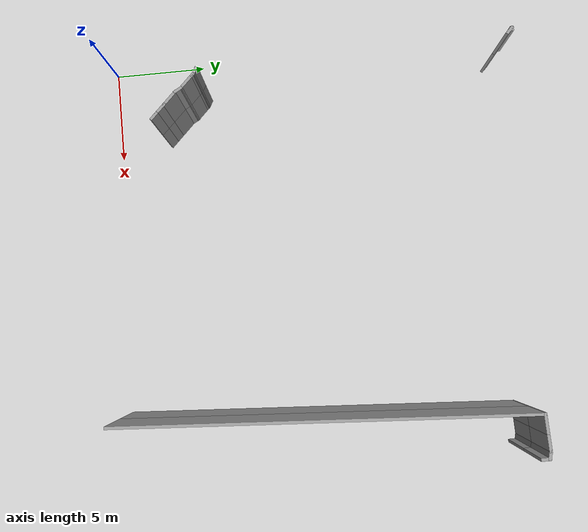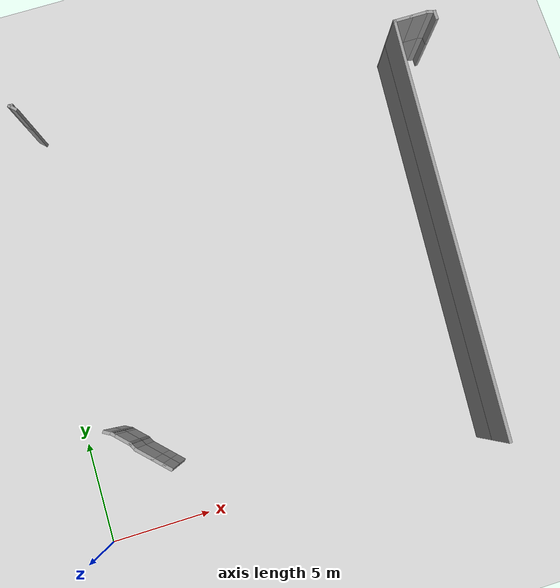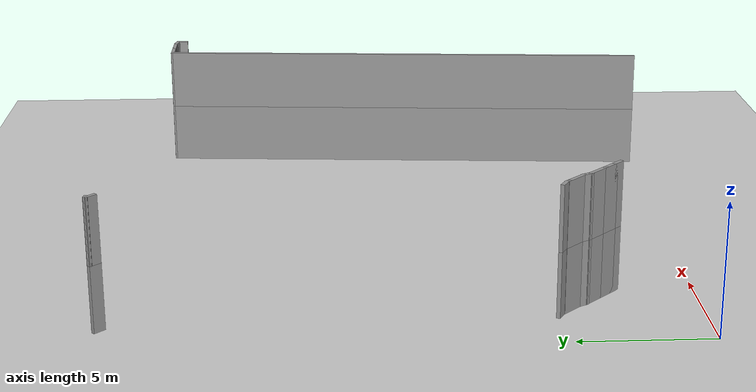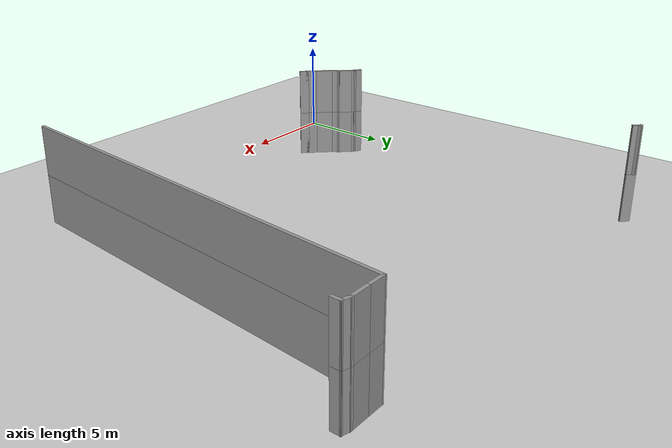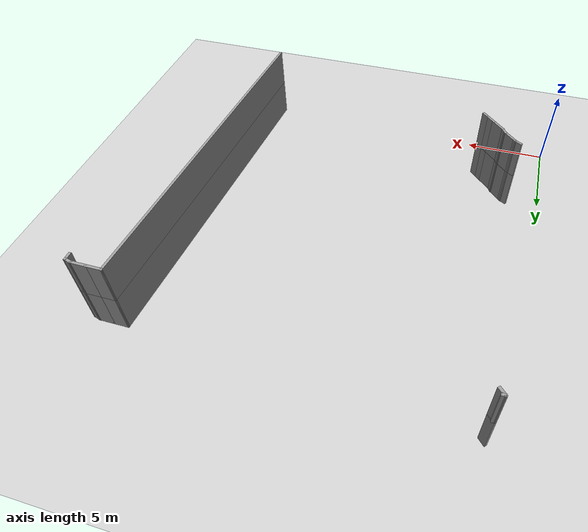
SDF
<sdf version="1.7">
 <world name="default">
  <model name="ground_plane">
   <static>1</static>
   <link name="link">
    <collision name="collision">
     <geometry><plane><normal>0 0 1</normal><size>100 100</size></plane></geometry>
     <surface>
      <contact><collide_bitmask>65535</collide_bitmask></contact>
      <friction><ode><mu>100</mu><mu2>50</mu2></ode></friction>
     </surface>
    </collision>
    <visual name="visual">
     <cast_shadows>0</cast_shadows>
     <geometry><plane><normal>0 0 1</normal><size>100 100</size></plane></geometry>
     <material>
      <script><uri>file://media/materials/scripts/gazebo.material</uri><name>Gazebo/Grey</name></script>
     </material>
    </visual>
   </link>
  </model>
  <model name="EnvDC01">
   <link name="Wall_260">
    <pose>-4.85596 27.6265 0 0 0 -0.785398</pose>
    <visual name="Wall_260_Visual">
     <pose>0 0 1.25 0 -0 0</pose>
     <geometry><box><size>0.5 0.15 2.5</size></box></geometry>
     <material>
      <script><uri>file://media/materials/scripts/gazebo.material</uri><name>Gazebo/Grey</name></script>
      <ambient>1 1 1 1</ambient>
      <shader type="pixel"/>
     </material>
     <meta><layer>0</layer></meta>
    </visual>
    <collision name="Wall_260_Collision">
     <pose>0 0 1.25 0 -0 0</pose>
     <geometry><box><size>0.5 0.15 2.5</size></box></geometry>
     <surface>
      <friction>
       <ode><mu>1</mu><mu2>1</mu2><fdir1>0 0 0</fdir1><slip1>0</slip1><slip2>0</slip2></ode>
       <torsional>
        <coefficient>1</coefficient>
        <patch_radius>0</patch_radius>
        <surface_radius>0</surface_radius>
        <use_patch_radius>1</use_patch_radius>
        <ode><slip>0</slip></ode>
       </torsional>
      </friction>
      <bounce><restitution_coefficient>0</restitution_coefficient><threshold>1e+06</threshold></bounce>
      <contact>
       <collide_without_contact>0</collide_without_contact>
       <collide_without_contact_bitmask>1</collide_without_contact_bitmask>
       <collide_bitmask>1</collide_bitmask>
       <ode>
        <soft_cfm>0</soft_cfm>
        <soft_erp>0.2</soft_erp>
        <kp>1e+13</kp>
        <kd>1</kd>
        <max_vel>0.01</max_vel>
        <min_depth>0</min_depth>
       </ode>
       <bullet>
        <split_impulse>1</split_impulse>
        <split_impulse_penetration_threshold>-0.01</split_impulse_penetration_threshold>
        <soft_cfm>0</soft_cfm>
        <soft_erp>0.2</soft_erp>
        <kp>1e+13</kp>
        <kd>1</kd>
       </bullet>
      </contact>
     </surface>
    </collision>
   </link>
   <link name="Wall_269">
    <pose>16.2758 26.2797 2.5 0 0 -1.5708</pose>
    <visual name="Wall_269_Visual">
     <pose>0 0 1.25 0 -0 0</pose>
     <geometry><box><size>0.5 0.15 2.5</size></box></geometry>
     <material>
      <script><uri>file://media/materials/scripts/gazebo.material</uri><name>Gazebo/Grey</name></script>
      <ambient>1 1 1 1</ambient>
      <shader type="pixel"/>
     </material>
     <meta><layer>1</layer></meta>
    </visual>
    <collision name="Wall_269_Collision">
     <pose>0 0 1.25 0 -0 0</pose>
     <geometry><box><size>0.5 0.15 2.5</size></box></geometry>
     <surface>
      <friction>
       <ode><mu>1</mu><mu2>1</mu2><fdir1>0 0 0</fdir1><slip1>0</slip1><slip2>0</slip2></ode>
       <torsional>
        <coefficient>1</coefficient>
        <patch_radius>0</patch_radius>
        <surface_radius>0</surface_radius>
        <use_patch_radius>1</use_patch_radius>
        <ode><slip>0</slip></ode>
       </torsional>
      </friction>
      <bounce><restitution_coefficient>0</restitution_coefficient><threshold>1e+06</threshold></bounce>
      <contact>
       <collide_without_contact>0</collide_without_contact>
       <collide_without_contact_bitmask>1</collide_without_contact_bitmask>
       <collide_bitmask>1</collide_bitmask>
       <ode>
        <soft_cfm>0</soft_cfm>
        <soft_erp>0.2</soft_erp>
        <kp>1e+13</kp>
        <kd>1</kd>
        <max_vel>0.01</max_vel>
        <min_depth>0</min_depth>
       </ode>
       <bullet>
        <split_impulse>1</split_impulse>
        <split_impulse_penetration_threshold>-0.01</split_impulse_penetration_threshold>
        <soft_cfm>0</soft_cfm>
        <soft_erp>0.2</soft_erp>
        <kp>1e+13</kp>
        <kd>1</kd>
       </bullet>
      </contact>
     </surface>
    </collision>
   </link>
   <link name="Wall_270">
    <pose>16.1067 26.5 2.5 0 -0 2.87979</pose>
    <visual name="Wall_270_Visual">
     <pose>0 0 1.25 0 -0 0</pose>
     <geometry><box><size>0.5 0.15 2.5</size></box></geometry>
     <material>
      <script><uri>file://media/materials/scripts/gazebo.material</uri><name>Gazebo/Grey</name></script>
      <ambient>1 1 1 1</ambient>
      <shader type="pixel"/>
     </material>
     <meta><layer>1</layer></meta>
    </visual>
    <collision name="Wall_270_Collision">
     <pose>0 0 1.25 0 -0 0</pose>
     <geometry><box><size>0.5 0.15 2.5</size></box></geometry>
     <surface>
      <friction>
       <ode><mu>1</mu><mu2>1</mu2><fdir1>0 0 0</fdir1><slip1>0</slip1><slip2>0</slip2></ode>
       <torsional>
        <coefficient>1</coefficient>
        <patch_radius>0</patch_radius>
        <surface_radius>0</surface_radius>
        <use_patch_radius>1</use_patch_radius>
        <ode><slip>0</slip></ode>
       </torsional>
      </friction>
      <bounce><restitution_coefficient>0</restitution_coefficient><threshold>1e+06</threshold></bounce>
      <contact>
       <collide_without_contact>0</collide_without_contact>
       <collide_without_contact_bitmask>1</collide_without_contact_bitmask>
       <collide_bitmask>1</collide_bitmask>
       <ode>
        <soft_cfm>0</soft_cfm>
        <soft_erp>0.2</soft_erp>
        <kp>1e+13</kp>
        <kd>1</kd>
        <max_vel>0.01</max_vel>
        <min_depth>0</min_depth>
       </ode>
       <bullet>
        <split_impulse>1</split_impulse>
        <split_impulse_penetration_threshold>-0.01</split_impulse_penetration_threshold>
        <soft_cfm>0</soft_cfm>
        <soft_erp>0.2</soft_erp>
        <kp>1e+13</kp>
        <kd>1</kd>
       </bullet>
      </contact>
     </surface>
    </collision>
   </link>
   <link name="Wall_271">
    <pose>15.5127 26.5453 2.5 0 -0 3.14159</pose>
    <visual name="Wall_271_Visual">
     <pose>0 0 1.25 0 -0 0</pose>
     <geometry><box><size>1 0.15 2.5</size></box></geometry>
     <material>
      <script><uri>file://media/materials/scripts/gazebo.material</uri><name>Gazebo/Grey</name></script>
      <ambient>1 1 1 1</ambient>
      <shader type="pixel"/>
     </material>
     <meta><layer>1</layer></meta>
    </visual>
    <collision name="Wall_271_Collision">
     <pose>0 0 1.25 0 -0 0</pose>
     <geometry><box><size>1 0.15 2.5</size></box></geometry>
     <surface>
      <friction>
       <ode><mu>1</mu><mu2>1</mu2><fdir1>0 0 0</fdir1><slip1>0</slip1><slip2>0</slip2></ode>
       <torsional>
        <coefficient>1</coefficient>
        <patch_radius>0</patch_radius>
        <surface_radius>0</surface_radius>
        <use_patch_radius>1</use_patch_radius>
        <ode><slip>0</slip></ode>
       </torsional>
      </friction>
      <bounce><restitution_coefficient>0</restitution_coefficient><threshold>1e+06</threshold></bounce>
      <contact>
       <collide_without_contact>0</collide_without_contact>
       <collide_without_contact_bitmask>1</collide_without_contact_bitmask>
       <collide_bitmask>1</collide_bitmask>
       <ode>
        <soft_cfm>0</soft_cfm>
        <soft_erp>0.2</soft_erp>
        <kp>1e+13</kp>
        <kd>1</kd>
        <max_vel>0.01</max_vel>
        <min_depth>0</min_depth>
       </ode>
       <bullet>
        <split_impulse>1</split_impulse>
        <split_impulse_penetration_threshold>-0.01</split_impulse_penetration_threshold>
        <soft_cfm>0</soft_cfm>
        <soft_erp>0.2</soft_erp>
        <kp>1e+13</kp>
        <kd>1</kd>
       </bullet>
      </contact>
     </surface>
    </collision>
   </link>
   <link name="Wall_272">
    <pose>14.6627 26.5453 2.5 0 -0 3.14159</pose>
    <visual name="Wall_272_Visual">
     <pose>0 0 1.25 0 -0 0</pose>
     <geometry><box><size>1 0.15 2.5</size></box></geometry>
     <material>
      <script><uri>file://media/materials/scripts/gazebo.material</uri><name>Gazebo/Grey</name></script>
      <ambient>1 1 1 1</ambient>
      <shader type="pixel"/>
     </material>
     <meta><layer>1</layer></meta>
    </visual>
    <collision name="Wall_272_Collision">
     <pose>0 0 1.25 0 -0 0</pose>
     <geometry><box><size>1 0.15 2.5</size></box></geometry>
     <surface>
      <friction>
       <ode><mu>1</mu><mu2>1</mu2><fdir1>0 0 0</fdir1><slip1>0</slip1><slip2>0</slip2></ode>
       <torsional>
        <coefficient>1</coefficient>
        <patch_radius>0</patch_radius>
        <surface_radius>0</surface_radius>
        <use_patch_radius>1</use_patch_radius>
        <ode><slip>0</slip></ode>
       </torsional>
      </friction>
      <bounce><restitution_coefficient>0</restitution_coefficient><threshold>1e+06</threshold></bounce>
      <contact>
       <collide_without_contact>0</collide_without_contact>
       <collide_without_contact_bitmask>1</collide_without_contact_bitmask>
       <collide_bitmask>1</collide_bitmask>
       <ode>
        <soft_cfm>0</soft_cfm>
        <soft_erp>0.2</soft_erp>
        <kp>1e+13</kp>
        <kd>1</kd>
        <max_vel>0.01</max_vel>
        <min_depth>0</min_depth>
       </ode>
       <bullet>
        <split_impulse>1</split_impulse>
        <split_impulse_penetration_threshold>-0.01</split_impulse_penetration_threshold>
        <soft_cfm>0</soft_cfm>
        <soft_erp>0.2</soft_erp>
        <kp>1e+13</kp>
        <kd>1</kd>
       </bullet>
      </contact>
     </surface>
    </collision>
   </link>
   <link name="Wall_273">
    <pose>13.477 16.2089 2.5 0 0 -1.64426</pose>
    <visual name="Wall_273_Visual">
     <pose>0 0 1.25 0 -0 0</pose>
     <geometry><box><size>20.8787 0.15 2.5</size></box></geometry>
     <material>
      <script><uri>file://media/materials/scripts/gazebo.material</uri><name>Gazebo/Grey</name></script>
      <ambient>1 1 1 1</ambient>
      <shader type="pixel"/>
     </material>
     <meta><layer>1</layer></meta>
    </visual>
    <collision name="Wall_273_Collision">
     <pose>0 0 1.25 0 -0 0</pose>
     <geometry><box><size>20.8787 0.15 2.5</size></box></geometry>
     <surface>
      <friction>
       <ode><mu>1</mu><mu2>1</mu2><fdir1>0 0 0</fdir1><slip1>0</slip1><slip2>0</slip2></ode>
       <torsional>
        <coefficient>1</coefficient>
        <patch_radius>0</patch_radius>
        <surface_radius>0</surface_radius>
        <use_patch_radius>1</use_patch_radius>
        <ode><slip>0</slip></ode>
       </torsional>
      </friction>
      <bounce><restitution_coefficient>0</restitution_coefficient><threshold>1e+06</threshold></bounce>
      <contact>
       <collide_without_contact>0</collide_without_contact>
       <collide_without_contact_bitmask>1</collide_without_contact_bitmask>
       <collide_bitmask>1</collide_bitmask>
       <ode>
        <soft_cfm>0</soft_cfm>
        <soft_erp>0.2</soft_erp>
        <kp>1e+13</kp>
        <kd>1</kd>
        <max_vel>0.01</max_vel>
        <min_depth>0</min_depth>
       </ode>
       <bullet>
        <split_impulse>1</split_impulse>
        <split_impulse_penetration_threshold>-0.01</split_impulse_penetration_threshold>
        <soft_cfm>0</soft_cfm>
        <soft_erp>0.2</soft_erp>
        <kp>1e+13</kp>
        <kd>1</kd>
       </bullet>
      </contact>
     </surface>
    </collision>
   </link>
   <link name="Wall_300">
    <pose>-2.20785 9.22536 2.5 0 -0 2.35619</pose>
    <visual name="Wall_300_Visual">
     <pose>0 0 1.25 0 -0 0</pose>
     <geometry><box><size>0.5 0.15 2.5</size></box></geometry>
     <material>
      <script><uri>file://media/materials/scripts/gazebo.material</uri><name>Gazebo/Grey</name></script>
      <ambient>1 1 1 1</ambient>
      <shader type="pixel"/>
     </material>
     <meta><layer>1</layer></meta>
    </visual>
    <collision name="Wall_300_Collision">
     <pose>0 0 1.25 0 -0 0</pose>
     <geometry><box><size>0.5 0.15 2.5</size></box></geometry>
     <surface>
      <friction>
       <ode><mu>1</mu><mu2>1</mu2><fdir1>0 0 0</fdir1><slip1>0</slip1><slip2>0</slip2></ode>
       <torsional>
        <coefficient>1</coefficient>
        <patch_radius>0</patch_radius>
        <surface_radius>0</surface_radius>
        <use_patch_radius>1</use_patch_radius>
        <ode><slip>0</slip></ode>
       </torsional>
      </friction>
      <bounce><restitution_coefficient>0</restitution_coefficient><threshold>1e+06</threshold></bounce>
      <contact>
       <collide_without_contact>0</collide_without_contact>
       <collide_without_contact_bitmask>1</collide_without_contact_bitmask>
       <collide_bitmask>1</collide_bitmask>
       <ode>
        <soft_cfm>0</soft_cfm>
        <soft_erp>0.2</soft_erp>
        <kp>1e+13</kp>
        <kd>1</kd>
        <max_vel>0.01</max_vel>
        <min_depth>0</min_depth>
       </ode>
       <bullet>
        <split_impulse>1</split_impulse>
        <split_impulse_penetration_threshold>-0.01</split_impulse_penetration_threshold>
        <soft_cfm>0</soft_cfm>
        <soft_erp>0.2</soft_erp>
        <kp>1e+13</kp>
        <kd>1</kd>
       </bullet>
      </contact>
     </surface>
    </collision>
   </link>
   <link name="Wall_301">
    <pose>-2.54372 9.56123 2.5 0 -0 2.35619</pose>
    <visual name="Wall_301_Visual">
     <pose>0 0 1.25 0 -0 0</pose>
     <geometry><box><size>0.75 0.15 2.5</size></box></geometry>
     <material>
      <script><uri>file://media/materials/scripts/gazebo.material</uri><name>Gazebo/Grey</name></script>
      <ambient>1 1 1 1</ambient>
      <shader type="pixel"/>
     </material>
     <meta><layer>1</layer></meta>
    </visual>
    <collision name="Wall_301_Collision">
     <pose>0 0 1.25 0 -0 0</pose>
     <geometry><box><size>0.75 0.15 2.5</size></box></geometry>
     <surface>
      <friction>
       <ode><mu>1</mu><mu2>1</mu2><fdir1>0 0 0</fdir1><slip1>0</slip1><slip2>0</slip2></ode>
       <torsional>
        <coefficient>1</coefficient>
        <patch_radius>0</patch_radius>
        <surface_radius>0</surface_radius>
        <use_patch_radius>1</use_patch_radius>
        <ode><slip>0</slip></ode>
       </torsional>
      </friction>
      <bounce><restitution_coefficient>0</restitution_coefficient><threshold>1e+06</threshold></bounce>
      <contact>
       <collide_without_contact>0</collide_without_contact>
       <collide_without_contact_bitmask>1</collide_without_contact_bitmask>
       <collide_bitmask>1</collide_bitmask>
       <ode>
        <soft_cfm>0</soft_cfm>
        <soft_erp>0.2</soft_erp>
        <kp>1e+13</kp>
        <kd>1</kd>
        <max_vel>0.01</max_vel>
        <min_depth>0</min_depth>
       </ode>
       <bullet>
        <split_impulse>1</split_impulse>
        <split_impulse_penetration_threshold>-0.01</split_impulse_penetration_threshold>
        <soft_cfm>0</soft_cfm>
        <soft_erp>0.2</soft_erp>
        <kp>1e+13</kp>
        <kd>1</kd>
       </bullet>
      </contact>
     </surface>
    </collision>
   </link>
   <link name="Wall_302">
    <pose>-3.05637 10.0739 2.5 0 -0 2.35619</pose>
    <visual name="Wall_302_Visual">
     <pose>0 0 1.25 0 -0 0</pose>
     <geometry><box><size>1 0.15 2.5</size></box></geometry>
     <material>
      <script><uri>file://media/materials/scripts/gazebo.material</uri><name>Gazebo/Grey</name></script>
      <ambient>1 1 1 1</ambient>
      <shader type="pixel"/>
     </material>
     <meta><layer>1</layer></meta>
    </visual>
    <collision name="Wall_302_Collision">
     <pose>0 0 1.25 0 -0 0</pose>
     <geometry><box><size>1 0.15 2.5</size></box></geometry>
     <surface>
      <friction>
       <ode><mu>1</mu><mu2>1</mu2><fdir1>0 0 0</fdir1><slip1>0</slip1><slip2>0</slip2></ode>
       <torsional>
        <coefficient>1</coefficient>
        <patch_radius>0</patch_radius>
        <surface_radius>0</surface_radius>
        <use_patch_radius>1</use_patch_radius>
        <ode><slip>0</slip></ode>
       </torsional>
      </friction>
      <bounce><restitution_coefficient>0</restitution_coefficient><threshold>1e+06</threshold></bounce>
      <contact>
       <collide_without_contact>0</collide_without_contact>
       <collide_without_contact_bitmask>1</collide_without_contact_bitmask>
       <collide_bitmask>1</collide_bitmask>
       <ode>
        <soft_cfm>0</soft_cfm>
        <soft_erp>0.2</soft_erp>
        <kp>1e+13</kp>
        <kd>1</kd>
        <max_vel>0.01</max_vel>
        <min_depth>0</min_depth>
       </ode>
       <bullet>
        <split_impulse>1</split_impulse>
        <split_impulse_penetration_threshold>-0.01</split_impulse_penetration_threshold>
        <soft_cfm>0</soft_cfm>
        <soft_erp>0.2</soft_erp>
        <kp>1e+13</kp>
        <kd>1</kd>
       </bullet>
      </contact>
     </surface>
    </collision>
   </link>
   <link name="Wall_303">
    <pose>-3.44439 10.526 2.5 0 -0 2.0944</pose>
    <visual name="Wall_303_Visual">
     <pose>0 0 1.25 0 -0 0</pose>
     <geometry><box><size>0.5 0.15 2.5</size></box></geometry>
     <material>
      <script><uri>file://media/materials/scripts/gazebo.material</uri><name>Gazebo/Grey</name></script>
      <ambient>1 1 1 1</ambient>
      <shader type="pixel"/>
     </material>
     <meta><layer>1</layer></meta>
    </visual>
    <collision name="Wall_303_Collision">
     <pose>0 0 1.25 0 -0 0</pose>
     <geometry><box><size>0.5 0.15 2.5</size></box></geometry>
     <surface>
      <friction>
       <ode><mu>1</mu><mu2>1</mu2><fdir1>0 0 0</fdir1><slip1>0</slip1><slip2>0</slip2></ode>
       <torsional>
        <coefficient>1</coefficient>
        <patch_radius>0</patch_radius>
        <surface_radius>0</surface_radius>
        <use_patch_radius>1</use_patch_radius>
        <ode><slip>0</slip></ode>
       </torsional>
      </friction>
      <bounce><restitution_coefficient>0</restitution_coefficient><threshold>1e+06</threshold></bounce>
      <contact>
       <collide_without_contact>0</collide_without_contact>
       <collide_without_contact_bitmask>1</collide_without_contact_bitmask>
       <collide_bitmask>1</collide_bitmask>
       <ode>
        <soft_cfm>0</soft_cfm>
        <soft_erp>0.2</soft_erp>
        <kp>1e+13</kp>
        <kd>1</kd>
        <max_vel>0.01</max_vel>
        <min_depth>0</min_depth>
       </ode>
       <bullet>
        <split_impulse>1</split_impulse>
        <split_impulse_penetration_threshold>-0.01</split_impulse_penetration_threshold>
        <soft_cfm>0</soft_cfm>
        <soft_erp>0.2</soft_erp>
        <kp>1e+13</kp>
        <kd>1</kd>
       </bullet>
      </contact>
     </surface>
    </collision>
   </link>
   <link name="Wall_304">
    <pose>-3.83242 10.978 2.5 0 -0 2.35619</pose>
    <visual name="Wall_304_Visual">
     <pose>0 0 1.25 0 -0 0</pose>
     <geometry><box><size>1 0.15 2.5</size></box></geometry>
     <material>
      <script><uri>file://media/materials/scripts/gazebo.material</uri><name>Gazebo/Grey</name></script>
      <ambient>1 1 1 1</ambient>
      <shader type="pixel"/>
     </material>
     <meta><layer>1</layer></meta>
    </visual>
    <collision name="Wall_304_Collision">
     <pose>0 0 1.25 0 -0 0</pose>
     <geometry><box><size>1 0.15 2.5</size></box></geometry>
     <surface>
      <friction>
       <ode><mu>1</mu><mu2>1</mu2><fdir1>0 0 0</fdir1><slip1>0</slip1><slip2>0</slip2></ode>
       <torsional>
        <coefficient>1</coefficient>
        <patch_radius>0</patch_radius>
        <surface_radius>0</surface_radius>
        <use_patch_radius>1</use_patch_radius>
        <ode><slip>0</slip></ode>
       </torsional>
      </friction>
      <bounce><restitution_coefficient>0</restitution_coefficient><threshold>1e+06</threshold></bounce>
      <contact>
       <collide_without_contact>0</collide_without_contact>
       <collide_without_contact_bitmask>1</collide_without_contact_bitmask>
       <collide_bitmask>1</collide_bitmask>
       <ode>
        <soft_cfm>0</soft_cfm>
        <soft_erp>0.2</soft_erp>
        <kp>1e+13</kp>
        <kd>1</kd>
        <max_vel>0.01</max_vel>
        <min_depth>0</min_depth>
       </ode>
       <bullet>
        <split_impulse>1</split_impulse>
        <split_impulse_penetration_threshold>-0.01</split_impulse_penetration_threshold>
        <soft_cfm>0</soft_cfm>
        <soft_erp>0.2</soft_erp>
        <kp>1e+13</kp>
        <kd>1</kd>
       </bullet>
      </contact>
     </surface>
    </collision>
   </link>
   <link name="Wall_305">
    <pose>-4.16829 11.3139 2.5 0 -0 2.35619</pose>
    <visual name="Wall_305_Visual">
     <pose>0 0 1.25 0 -0 0</pose>
     <geometry><box><size>0.25 0.15 2.5</size></box></geometry>
     <material>
      <script><uri>file://media/materials/scripts/gazebo.material</uri><name>Gazebo/Grey</name></script>
      <ambient>1 1 1 1</ambient>
      <shader type="pixel"/>
     </material>
     <meta><layer>1</layer></meta>
    </visual>
    <collision name="Wall_305_Collision">
     <pose>0 0 1.25 0 -0 0</pose>
     <geometry><box><size>0.25 0.15 2.5</size></box></geometry>
     <surface>
      <friction>
       <ode><mu>1</mu><mu2>1</mu2><fdir1>0 0 0</fdir1><slip1>0</slip1><slip2>0</slip2></ode>
       <torsional>
        <coefficient>1</coefficient>
        <patch_radius>0</patch_radius>
        <surface_radius>0</surface_radius>
        <use_patch_radius>1</use_patch_radius>
        <ode><slip>0</slip></ode>
       </torsional>
      </friction>
      <bounce><restitution_coefficient>0</restitution_coefficient><threshold>1e+06</threshold></bounce>
      <contact>
       <collide_without_contact>0</collide_without_contact>
       <collide_without_contact_bitmask>1</collide_without_contact_bitmask>
       <collide_bitmask>1</collide_bitmask>
       <ode>
        <soft_cfm>0</soft_cfm>
        <soft_erp>0.2</soft_erp>
        <kp>1e+13</kp>
        <kd>1</kd>
        <max_vel>0.01</max_vel>
        <min_depth>0</min_depth>
       </ode>
       <bullet>
        <split_impulse>1</split_impulse>
        <split_impulse_penetration_threshold>-0.01</split_impulse_penetration_threshold>
        <soft_cfm>0</soft_cfm>
        <soft_erp>0.2</soft_erp>
        <kp>1e+13</kp>
        <kd>1</kd>
       </bullet>
      </contact>
     </surface>
    </collision>
   </link>
   <link name="Wall_306">
    <pose>-4.3552 11.4368 2.5 0 -0 2.61799</pose>
    <visual name="Wall_306_Visual">
     <pose>0 0 1.25 0 -0 0</pose>
     <geometry><box><size>0.5 0.15 2.5</size></box></geometry>
     <material>
      <script><uri>file://media/materials/scripts/gazebo.material</uri><name>Gazebo/Grey</name></script>
      <ambient>1 1 1 1</ambient>
      <shader type="pixel"/>
     </material>
     <meta><layer>1</layer></meta>
    </visual>
    <collision name="Wall_306_Collision">
     <pose>0 0 1.25 0 -0 0</pose>
     <geometry><box><size>0.5 0.15 2.5</size></box></geometry>
     <surface>
      <friction>
       <ode><mu>1</mu><mu2>1</mu2><fdir1>0 0 0</fdir1><slip1>0</slip1><slip2>0</slip2></ode>
       <torsional>
        <coefficient>1</coefficient>
        <patch_radius>0</patch_radius>
        <surface_radius>0</surface_radius>
        <use_patch_radius>1</use_patch_radius>
        <ode><slip>0</slip></ode>
       </torsional>
      </friction>
      <bounce><restitution_coefficient>0</restitution_coefficient><threshold>1e+06</threshold></bounce>
      <contact>
       <collide_without_contact>0</collide_without_contact>
       <collide_without_contact_bitmask>1</collide_without_contact_bitmask>
       <collide_bitmask>1</collide_bitmask>
       <ode>
        <soft_cfm>0</soft_cfm>
        <soft_erp>0.2</soft_erp>
        <kp>1e+13</kp>
        <kd>1</kd>
        <max_vel>0.01</max_vel>
        <min_depth>0</min_depth>
       </ode>
       <bullet>
        <split_impulse>1</split_impulse>
        <split_impulse_penetration_threshold>-0.01</split_impulse_penetration_threshold>
        <soft_cfm>0</soft_cfm>
        <soft_erp>0.2</soft_erp>
        <kp>1e+13</kp>
        <kd>1</kd>
       </bullet>
      </contact>
     </surface>
    </collision>
   </link>
   <link name="Wall_419">
    <pose>-4.9297 27.7502 2.5 0 -0 0</pose>
    <visual name="Wall_419_Visual">
     <pose>0 0 1.25 0 -0 0</pose>
     <geometry><box><size>0.25 0.15 2.5</size></box></geometry>
     <material>
      <script><uri>file://media/materials/scripts/gazebo.material</uri><name>Gazebo/Grey</name></script>
      <ambient>1 1 1 1</ambient>
      <shader type="pixel"/>
     </material>
     <meta><layer>1</layer></meta>
    </visual>
    <collision name="Wall_419_Collision">
     <pose>0 0 1.25 0 -0 0</pose>
     <geometry><box><size>0.25 0.15 2.5</size></box></geometry>
     <surface>
      <friction>
       <ode><mu>1</mu><mu2>1</mu2><fdir1>0 0 0</fdir1><slip1>0</slip1><slip2>0</slip2></ode>
       <torsional>
        <coefficient>1</coefficient>
        <patch_radius>0</patch_radius>
        <surface_radius>0</surface_radius>
        <use_patch_radius>1</use_patch_radius>
        <ode><slip>0</slip></ode>
       </torsional>
      </friction>
      <bounce><restitution_coefficient>0</restitution_coefficient><threshold>1e+06</threshold></bounce>
      <contact>
       <collide_without_contact>0</collide_without_contact>
       <collide_without_contact_bitmask>1</collide_without_contact_bitmask>
       <collide_bitmask>1</collide_bitmask>
       <ode>
        <soft_cfm>0</soft_cfm>
        <soft_erp>0.2</soft_erp>
        <kp>1e+13</kp>
        <kd>1</kd>
        <max_vel>0.01</max_vel>
        <min_depth>0</min_depth>
       </ode>
       <bullet>
        <split_impulse>1</split_impulse>
        <split_impulse_penetration_threshold>-0.01</split_impulse_penetration_threshold>
        <soft_cfm>0</soft_cfm>
        <soft_erp>0.2</soft_erp>
        <kp>1e+13</kp>
        <kd>1</kd>
       </bullet>
      </contact>
     </surface>
    </collision>
   </link>
   <link name="Wall_420">
    <pose>-4.85596 27.6265 2.5 0 0 -0.785398</pose>
    <visual name="Wall_420_Visual">
     <pose>0 0 1.25 0 -0 0</pose>
     <geometry><box><size>0.5 0.15 2.5</size></box></geometry>
     <material>
      <script><uri>file://media/materials/scripts/gazebo.material</uri><name>Gazebo/Grey</name></script>
      <ambient>1 1 1 1</ambient>
      <shader type="pixel"/>
     </material>
     <meta><layer>1</layer></meta>
    </visual>
    <collision name="Wall_420_Collision">
     <pose>0 0 1.25 0 -0 0</pose>
     <geometry><box><size>0.5 0.15 2.5</size></box></geometry>
     <surface>
      <friction>
       <ode><mu>1</mu><mu2>1</mu2><fdir1>0 0 0</fdir1><slip1>0</slip1><slip2>0</slip2></ode>
       <torsional>
        <coefficient>1</coefficient>
        <patch_radius>0</patch_radius>
        <surface_radius>0</surface_radius>
        <use_patch_radius>1</use_patch_radius>
        <ode><slip>0</slip></ode>
       </torsional>
      </friction>
      <bounce><restitution_coefficient>0</restitution_coefficient><threshold>1e+06</threshold></bounce>
      <contact>
       <collide_without_contact>0</collide_without_contact>
       <collide_without_contact_bitmask>1</collide_without_contact_bitmask>
       <collide_bitmask>1</collide_bitmask>
       <ode>
        <soft_cfm>0</soft_cfm>
        <soft_erp>0.2</soft_erp>
        <kp>1e+13</kp>
        <kd>1</kd>
        <max_vel>0.01</max_vel>
        <min_depth>0</min_depth>
       </ode>
       <bullet>
        <split_impulse>1</split_impulse>
        <split_impulse_penetration_threshold>-0.01</split_impulse_penetration_threshold>
        <soft_cfm>0</soft_cfm>
        <soft_erp>0.2</soft_erp>
        <kp>1e+13</kp>
        <kd>1</kd>
       </bullet>
      </contact>
     </surface>
    </collision>
   </link>
   <link name="Wall_47">
    <pose>16.2758 26.2797 0 0 0 -1.5708</pose>
    <visual name="Wall_47_Visual">
     <pose>0 0 1.25 0 -0 0</pose>
     <geometry><box><size>0.5 0.15 2.5</size></box></geometry>
     <material>
      <script><uri>file://media/materials/scripts/gazebo.material</uri><name>Gazebo/Grey</name></script>
      <ambient>1 1 1 1</ambient>
      <shader type="pixel"/>
     </material>
     <meta><layer>0</layer></meta>
    </visual>
    <collision name="Wall_47_Collision">
     <pose>0 0 1.25 0 -0 0</pose>
     <geometry><box><size>0.5 0.15 2.5</size></box></geometry>
     <surface>
      <friction>
       <ode><mu>1</mu><mu2>1</mu2><fdir1>0 0 0</fdir1><slip1>0</slip1><slip2>0</slip2></ode>
       <torsional>
        <coefficient>1</coefficient>
        <patch_radius>0</patch_radius>
        <surface_radius>0</surface_radius>
        <use_patch_radius>1</use_patch_radius>
        <ode><slip>0</slip></ode>
       </torsional>
      </friction>
      <bounce><restitution_coefficient>0</restitution_coefficient><threshold>1e+06</threshold></bounce>
      <contact>
       <collide_without_contact>0</collide_without_contact>
       <collide_without_contact_bitmask>1</collide_without_contact_bitmask>
       <collide_bitmask>1</collide_bitmask>
       <ode>
        <soft_cfm>0</soft_cfm>
        <soft_erp>0.2</soft_erp>
        <kp>1e+13</kp>
        <kd>1</kd>
        <max_vel>0.01</max_vel>
        <min_depth>0</min_depth>
       </ode>
       <bullet>
        <split_impulse>1</split_impulse>
        <split_impulse_penetration_threshold>-0.01</split_impulse_penetration_threshold>
        <soft_cfm>0</soft_cfm>
        <soft_erp>0.2</soft_erp>
        <kp>1e+13</kp>
        <kd>1</kd>
       </bullet>
      </contact>
     </surface>
    </collision>
   </link>
   <link name="Wall_49">
    <pose>16.1067 26.5 0 0 -0 2.87979</pose>
    <visual name="Wall_49_Visual">
     <pose>0 0 1.25 0 -0 0</pose>
     <geometry><box><size>0.5 0.15 2.5</size></box></geometry>
     <material>
      <script><uri>file://media/materials/scripts/gazebo.material</uri><name>Gazebo/Grey</name></script>
      <ambient>1 1 1 1</ambient>
      <shader type="pixel"/>
     </material>
     <meta><layer>0</layer></meta>
    </visual>
    <collision name="Wall_49_Collision">
     <pose>0 0 1.25 0 -0 0</pose>
     <geometry><box><size>0.5 0.15 2.5</size></box></geometry>
     <surface>
      <friction>
       <ode><mu>1</mu><mu2>1</mu2><fdir1>0 0 0</fdir1><slip1>0</slip1><slip2>0</slip2></ode>
       <torsional>
        <coefficient>1</coefficient>
        <patch_radius>0</patch_radius>
        <surface_radius>0</surface_radius>
        <use_patch_radius>1</use_patch_radius>
        <ode><slip>0</slip></ode>
       </torsional>
      </friction>
      <bounce><restitution_coefficient>0</restitution_coefficient><threshold>1e+06</threshold></bounce>
      <contact>
       <collide_without_contact>0</collide_without_contact>
       <collide_without_contact_bitmask>1</collide_without_contact_bitmask>
       <collide_bitmask>1</collide_bitmask>
       <ode>
        <soft_cfm>0</soft_cfm>
        <soft_erp>0.2</soft_erp>
        <kp>1e+13</kp>
        <kd>1</kd>
        <max_vel>0.01</max_vel>
        <min_depth>0</min_depth>
       </ode>
       <bullet>
        <split_impulse>1</split_impulse>
        <split_impulse_penetration_threshold>-0.01</split_impulse_penetration_threshold>
        <soft_cfm>0</soft_cfm>
        <soft_erp>0.2</soft_erp>
        <kp>1e+13</kp>
        <kd>1</kd>
       </bullet>
      </contact>
     </surface>
    </collision>
   </link>
   <link name="Wall_50">
    <pose>15.5127 26.5453 0 0 -0 3.14159</pose>
    <visual name="Wall_50_Visual">
     <pose>0 0 1.25 0 -0 0</pose>
     <geometry><box><size>1 0.15 2.5</size></box></geometry>
     <material>
      <script><uri>file://media/materials/scripts/gazebo.material</uri><name>Gazebo/Grey</name></script>
      <ambient>1 1 1 1</ambient>
      <shader type="pixel"/>
     </material>
     <meta><layer>0</layer></meta>
    </visual>
    <collision name="Wall_50_Collision">
     <pose>0 0 1.25 0 -0 0</pose>
     <geometry><box><size>1 0.15 2.5</size></box></geometry>
     <surface>
      <friction>
       <ode><mu>1</mu><mu2>1</mu2><fdir1>0 0 0</fdir1><slip1>0</slip1><slip2>0</slip2></ode>
       <torsional>
        <coefficient>1</coefficient>
        <patch_radius>0</patch_radius>
        <surface_radius>0</surface_radius>
        <use_patch_radius>1</use_patch_radius>
        <ode><slip>0</slip></ode>
       </torsional>
      </friction>
      <bounce><restitution_coefficient>0</restitution_coefficient><threshold>1e+06</threshold></bounce>
      <contact>
       <collide_without_contact>0</collide_without_contact>
       <collide_without_contact_bitmask>1</collide_without_contact_bitmask>
       <collide_bitmask>1</collide_bitmask>
       <ode>
        <soft_cfm>0</soft_cfm>
        <soft_erp>0.2</soft_erp>
        <kp>1e+13</kp>
        <kd>1</kd>
        <max_vel>0.01</max_vel>
        <min_depth>0</min_depth>
       </ode>
       <bullet>
        <split_impulse>1</split_impulse>
        <split_impulse_penetration_threshold>-0.01</split_impulse_penetration_threshold>
        <soft_cfm>0</soft_cfm>
        <soft_erp>0.2</soft_erp>
        <kp>1e+13</kp>
        <kd>1</kd>
       </bullet>
      </contact>
     </surface>
    </collision>
   </link>
   <link name="Wall_51">
    <pose>14.6627 26.5453 0 0 -0 3.14159</pose>
    <visual name="Wall_51_Visual">
     <pose>0 0 1.25 0 -0 0</pose>
     <geometry><box><size>1 0.15 2.5</size></box></geometry>
     <material>
      <script><uri>file://media/materials/scripts/gazebo.material</uri><name>Gazebo/Grey</name></script>
      <ambient>1 1 1 1</ambient>
      <shader type="pixel"/>
     </material>
     <meta><layer>0</layer></meta>
    </visual>
    <collision name="Wall_51_Collision">
     <pose>0 0 1.25 0 -0 0</pose>
     <geometry><box><size>1 0.15 2.5</size></box></geometry>
     <surface>
      <friction>
       <ode><mu>1</mu><mu2>1</mu2><fdir1>0 0 0</fdir1><slip1>0</slip1><slip2>0</slip2></ode>
       <torsional>
        <coefficient>1</coefficient>
        <patch_radius>0</patch_radius>
        <surface_radius>0</surface_radius>
        <use_patch_radius>1</use_patch_radius>
        <ode><slip>0</slip></ode>
       </torsional>
      </friction>
      <bounce><restitution_coefficient>0</restitution_coefficient><threshold>1e+06</threshold></bounce>
      <contact>
       <collide_without_contact>0</collide_without_contact>
       <collide_without_contact_bitmask>1</collide_without_contact_bitmask>
       <collide_bitmask>1</collide_bitmask>
       <ode>
        <soft_cfm>0</soft_cfm>
        <soft_erp>0.2</soft_erp>
        <kp>1e+13</kp>
        <kd>1</kd>
        <max_vel>0.01</max_vel>
        <min_depth>0</min_depth>
       </ode>
       <bullet>
        <split_impulse>1</split_impulse>
        <split_impulse_penetration_threshold>-0.01</split_impulse_penetration_threshold>
        <soft_cfm>0</soft_cfm>
        <soft_erp>0.2</soft_erp>
        <kp>1e+13</kp>
        <kd>1</kd>
       </bullet>
      </contact>
     </surface>
    </collision>
   </link>
   <link name="Wall_56">
    <pose>13.477 16.2089 0 0 0 -1.64426</pose>
    <visual name="Wall_56_Visual">
     <pose>0 0 1.25 0 -0 0</pose>
     <geometry><box><size>20.8787 0.15 2.5</size></box></geometry>
     <material>
      <script><uri>file://media/materials/scripts/gazebo.material</uri><name>Gazebo/Grey</name></script>
      <ambient>1 1 1 1</ambient>
      <shader type="pixel"/>
     </material>
     <meta><layer>0</layer></meta>
    </visual>
    <collision name="Wall_56_Collision">
     <pose>0 0 1.25 0 -0 0</pose>
     <geometry><box><size>20.8787 0.15 2.5</size></box></geometry>
     <surface>
      <friction>
       <ode><mu>1</mu><mu2>1</mu2><fdir1>0 0 0</fdir1><slip1>0</slip1><slip2>0</slip2></ode>
       <torsional>
        <coefficient>1</coefficient>
        <patch_radius>0</patch_radius>
        <surface_radius>0</surface_radius>
        <use_patch_radius>1</use_patch_radius>
        <ode><slip>0</slip></ode>
       </torsional>
      </friction>
      <bounce><restitution_coefficient>0</restitution_coefficient><threshold>1e+06</threshold></bounce>
      <contact>
       <collide_without_contact>0</collide_without_contact>
       <collide_without_contact_bitmask>1</collide_without_contact_bitmask>
       <collide_bitmask>1</collide_bitmask>
       <ode>
        <soft_cfm>0</soft_cfm>
        <soft_erp>0.2</soft_erp>
        <kp>1e+13</kp>
        <kd>1</kd>
        <max_vel>0.01</max_vel>
        <min_depth>0</min_depth>
       </ode>
       <bullet>
        <split_impulse>1</split_impulse>
        <split_impulse_penetration_threshold>-0.01</split_impulse_penetration_threshold>
        <soft_cfm>0</soft_cfm>
        <soft_erp>0.2</soft_erp>
        <kp>1e+13</kp>
        <kd>1</kd>
       </bullet>
      </contact>
     </surface>
    </collision>
   </link>
   <link name="Wall_89">
    <pose>-2.20785 9.22536 0 0 -0 2.35619</pose>
    <visual name="Wall_89_Visual">
     <pose>0 0 1.25 0 -0 0</pose>
     <geometry><box><size>0.5 0.15 2.5</size></box></geometry>
     <material>
      <script><uri>file://media/materials/scripts/gazebo.material</uri><name>Gazebo/Grey</name></script>
      <ambient>1 1 1 1</ambient>
      <shader type="pixel"/>
     </material>
     <meta><layer>0</layer></meta>
    </visual>
    <collision name="Wall_89_Collision">
     <pose>0 0 1.25 0 -0 0</pose>
     <geometry><box><size>0.5 0.15 2.5</size></box></geometry>
     <surface>
      <friction>
       <ode><mu>1</mu><mu2>1</mu2><fdir1>0 0 0</fdir1><slip1>0</slip1><slip2>0</slip2></ode>
       <torsional>
        <coefficient>1</coefficient>
        <patch_radius>0</patch_radius>
        <surface_radius>0</surface_radius>
        <use_patch_radius>1</use_patch_radius>
        <ode><slip>0</slip></ode>
       </torsional>
      </friction>
      <bounce><restitution_coefficient>0</restitution_coefficient><threshold>1e+06</threshold></bounce>
      <contact>
       <collide_without_contact>0</collide_without_contact>
       <collide_without_contact_bitmask>1</collide_without_contact_bitmask>
       <collide_bitmask>1</collide_bitmask>
       <ode>
        <soft_cfm>0</soft_cfm>
        <soft_erp>0.2</soft_erp>
        <kp>1e+13</kp>
        <kd>1</kd>
        <max_vel>0.01</max_vel>
        <min_depth>0</min_depth>
       </ode>
       <bullet>
        <split_impulse>1</split_impulse>
        <split_impulse_penetration_threshold>-0.01</split_impulse_penetration_threshold>
        <soft_cfm>0</soft_cfm>
        <soft_erp>0.2</soft_erp>
        <kp>1e+13</kp>
        <kd>1</kd>
       </bullet>
      </contact>
     </surface>
    </collision>
   </link>
   <link name="Wall_90">
    <pose>-2.54372 9.56123 0 0 -0 2.35619</pose>
    <visual name="Wall_90_Visual">
     <pose>0 0 1.25 0 -0 0</pose>
     <geometry><box><size>0.75 0.15 2.5</size></box></geometry>
     <material>
      <script><uri>file://media/materials/scripts/gazebo.material</uri><name>Gazebo/Grey</name></script>
      <ambient>1 1 1 1</ambient>
      <shader type="pixel"/>
     </material>
     <meta><layer>0</layer></meta>
    </visual>
    <collision name="Wall_90_Collision">
     <pose>0 0 1.25 0 -0 0</pose>
     <geometry><box><size>0.75 0.15 2.5</size></box></geometry>
     <surface>
      <friction>
       <ode><mu>1</mu><mu2>1</mu2><fdir1>0 0 0</fdir1><slip1>0</slip1><slip2>0</slip2></ode>
       <torsional>
        <coefficient>1</coefficient>
        <patch_radius>0</patch_radius>
        <surface_radius>0</surface_radius>
        <use_patch_radius>1</use_patch_radius>
        <ode><slip>0</slip></ode>
       </torsional>
      </friction>
      <bounce><restitution_coefficient>0</restitution_coefficient><threshold>1e+06</threshold></bounce>
      <contact>
       <collide_without_contact>0</collide_without_contact>
       <collide_without_contact_bitmask>1</collide_without_contact_bitmask>
       <collide_bitmask>1</collide_bitmask>
       <ode>
        <soft_cfm>0</soft_cfm>
        <soft_erp>0.2</soft_erp>
        <kp>1e+13</kp>
        <kd>1</kd>
        <max_vel>0.01</max_vel>
        <min_depth>0</min_depth>
       </ode>
       <bullet>
        <split_impulse>1</split_impulse>
        <split_impulse_penetration_threshold>-0.01</split_impulse_penetration_threshold>
        <soft_cfm>0</soft_cfm>
        <soft_erp>0.2</soft_erp>
        <kp>1e+13</kp>
        <kd>1</kd>
       </bullet>
      </contact>
     </surface>
    </collision>
   </link>
   <link name="Wall_92">
    <pose>-3.05637 10.0739 0 0 -0 2.35619</pose>
    <visual name="Wall_92_Visual">
     <pose>0 0 1.25 0 -0 0</pose>
     <geometry><box><size>1 0.15 2.5</size></box></geometry>
     <material>
      <script><uri>file://media/materials/scripts/gazebo.material</uri><name>Gazebo/Grey</name></script>
      <ambient>1 1 1 1</ambient>
      <shader type="pixel"/>
     </material>
     <meta><layer>0</layer></meta>
    </visual>
    <collision name="Wall_92_Collision">
     <pose>0 0 1.25 0 -0 0</pose>
     <geometry><box><size>1 0.15 2.5</size></box></geometry>
     <surface>
      <friction>
       <ode><mu>1</mu><mu2>1</mu2><fdir1>0 0 0</fdir1><slip1>0</slip1><slip2>0</slip2></ode>
       <torsional>
        <coefficient>1</coefficient>
        <patch_radius>0</patch_radius>
        <surface_radius>0</surface_radius>
        <use_patch_radius>1</use_patch_radius>
        <ode><slip>0</slip></ode>
       </torsional>
      </friction>
      <bounce><restitution_coefficient>0</restitution_coefficient><threshold>1e+06</threshold></bounce>
      <contact>
       <collide_without_contact>0</collide_without_contact>
       <collide_without_contact_bitmask>1</collide_without_contact_bitmask>
       <collide_bitmask>1</collide_bitmask>
       <ode>
        <soft_cfm>0</soft_cfm>
        <soft_erp>0.2</soft_erp>
        <kp>1e+13</kp>
        <kd>1</kd>
        <max_vel>0.01</max_vel>
        <min_depth>0</min_depth>
       </ode>
       <bullet>
        <split_impulse>1</split_impulse>
        <split_impulse_penetration_threshold>-0.01</split_impulse_penetration_threshold>
        <soft_cfm>0</soft_cfm>
        <soft_erp>0.2</soft_erp>
        <kp>1e+13</kp>
        <kd>1</kd>
       </bullet>
      </contact>
     </surface>
    </collision>
   </link>
   <link name="Wall_93">
    <pose>-3.44439 10.526 0 0 -0 2.0944</pose>
    <visual name="Wall_93_Visual">
     <pose>0 0 1.25 0 -0 0</pose>
     <geometry><box><size>0.5 0.15 2.5</size></box></geometry>
     <material>
      <script><uri>file://media/materials/scripts/gazebo.material</uri><name>Gazebo/Grey</name></script>
      <ambient>1 1 1 1</ambient>
      <shader type="pixel"/>
     </material>
     <meta><layer>0</layer></meta>
    </visual>
    <collision name="Wall_93_Collision">
     <pose>0 0 1.25 0 -0 0</pose>
     <geometry><box><size>0.5 0.15 2.5</size></box></geometry>
     <surface>
      <friction>
       <ode><mu>1</mu><mu2>1</mu2><fdir1>0 0 0</fdir1><slip1>0</slip1><slip2>0</slip2></ode>
       <torsional>
        <coefficient>1</coefficient>
        <patch_radius>0</patch_radius>
        <surface_radius>0</surface_radius>
        <use_patch_radius>1</use_patch_radius>
        <ode><slip>0</slip></ode>
       </torsional>
      </friction>
      <bounce><restitution_coefficient>0</restitution_coefficient><threshold>1e+06</threshold></bounce>
      <contact>
       <collide_without_contact>0</collide_without_contact>
       <collide_without_contact_bitmask>1</collide_without_contact_bitmask>
       <collide_bitmask>1</collide_bitmask>
       <ode>
        <soft_cfm>0</soft_cfm>
        <soft_erp>0.2</soft_erp>
        <kp>1e+13</kp>
        <kd>1</kd>
        <max_vel>0.01</max_vel>
        <min_depth>0</min_depth>
       </ode>
       <bullet>
        <split_impulse>1</split_impulse>
        <split_impulse_penetration_threshold>-0.01</split_impulse_penetration_threshold>
        <soft_cfm>0</soft_cfm>
        <soft_erp>0.2</soft_erp>
        <kp>1e+13</kp>
        <kd>1</kd>
       </bullet>
      </contact>
     </surface>
    </collision>
   </link>
   <link name="Wall_94">
    <pose>-3.83242 10.978 0 0 -0 2.35619</pose>
    <visual name="Wall_94_Visual">
     <pose>0 0 1.25 0 -0 0</pose>
     <geometry><box><size>1 0.15 2.5</size></box></geometry>
     <material>
      <script><uri>file://media/materials/scripts/gazebo.material</uri><name>Gazebo/Grey</name></script>
      <ambient>1 1 1 1</ambient>
      <shader type="pixel"/>
     </material>
     <meta><layer>0</layer></meta>
    </visual>
    <collision name="Wall_94_Collision">
     <pose>0 0 1.25 0 -0 0</pose>
     <geometry><box><size>1 0.15 2.5</size></box></geometry>
     <surface>
      <friction>
       <ode><mu>1</mu><mu2>1</mu2><fdir1>0 0 0</fdir1><slip1>0</slip1><slip2>0</slip2></ode>
       <torsional>
        <coefficient>1</coefficient>
        <patch_radius>0</patch_radius>
        <surface_radius>0</surface_radius>
        <use_patch_radius>1</use_patch_radius>
        <ode><slip>0</slip></ode>
       </torsional>
      </friction>
      <bounce><restitution_coefficient>0</restitution_coefficient><threshold>1e+06</threshold></bounce>
      <contact>
       <collide_without_contact>0</collide_without_contact>
       <collide_without_contact_bitmask>1</collide_without_contact_bitmask>
       <collide_bitmask>1</collide_bitmask>
       <ode>
        <soft_cfm>0</soft_cfm>
        <soft_erp>0.2</soft_erp>
        <kp>1e+13</kp>
        <kd>1</kd>
        <max_vel>0.01</max_vel>
        <min_depth>0</min_depth>
       </ode>
       <bullet>
        <split_impulse>1</split_impulse>
        <split_impulse_penetration_threshold>-0.01</split_impulse_penetration_threshold>
        <soft_cfm>0</soft_cfm>
        <soft_erp>0.2</soft_erp>
        <kp>1e+13</kp>
        <kd>1</kd>
       </bullet>
      </contact>
     </surface>
    </collision>
   </link>
   <link name="Wall_95">
    <pose>-4.16829 11.3139 0 0 -0 2.35619</pose>
    <visual name="Wall_95_Visual">
     <pose>0 0 1.25 0 -0 0</pose>
     <geometry><box><size>0.25 0.15 2.5</size></box></geometry>
     <material>
      <script><uri>file://media/materials/scripts/gazebo.material</uri><name>Gazebo/Grey</name></script>
      <ambient>1 1 1 1</ambient>
      <shader type="pixel"/>
     </material>
     <meta><layer>0</layer></meta>
    </visual>
    <collision name="Wall_95_Collision">
     <pose>0 0 1.25 0 -0 0</pose>
     <geometry><box><size>0.25 0.15 2.5</size></box></geometry>
     <surface>
      <friction>
       <ode><mu>1</mu><mu2>1</mu2><fdir1>0 0 0</fdir1><slip1>0</slip1><slip2>0</slip2></ode>
       <torsional>
        <coefficient>1</coefficient>
        <patch_radius>0</patch_radius>
        <surface_radius>0</surface_radius>
        <use_patch_radius>1</use_patch_radius>
        <ode><slip>0</slip></ode>
       </torsional>
      </friction>
      <bounce><restitution_coefficient>0</restitution_coefficient><threshold>1e+06</threshold></bounce>
      <contact>
       <collide_without_contact>0</collide_without_contact>
       <collide_without_contact_bitmask>1</collide_without_contact_bitmask>
       <collide_bitmask>1</collide_bitmask>
       <ode>
        <soft_cfm>0</soft_cfm>
        <soft_erp>0.2</soft_erp>
        <kp>1e+13</kp>
        <kd>1</kd>
        <max_vel>0.01</max_vel>
        <min_depth>0</min_depth>
       </ode>
       <bullet>
        <split_impulse>1</split_impulse>
        <split_impulse_penetration_threshold>-0.01</split_impulse_penetration_threshold>
        <soft_cfm>0</soft_cfm>
        <soft_erp>0.2</soft_erp>
        <kp>1e+13</kp>
        <kd>1</kd>
       </bullet>
      </contact>
     </surface>
    </collision>
   </link>
   <link name="Wall_96">
    <pose>-4.3552 11.4368 0 0 -0 2.61799</pose>
    <visual name="Wall_96_Visual">
     <pose>0 0 1.25 0 -0 0</pose>
     <geometry><box><size>0.5 0.15 2.5</size></box></geometry>
     <material>
      <script><uri>file://media/materials/scripts/gazebo.material</uri><name>Gazebo/Grey</name></script>
      <ambient>1 1 1 1</ambient>
      <shader type="pixel"/>
     </material>
     <meta><layer>0</layer></meta>
    </visual>
    <collision name="Wall_96_Collision">
     <pose>0 0 1.25 0 -0 0</pose>
     <geometry><box><size>0.5 0.15 2.5</size></box></geometry>
     <surface>
      <friction>
       <ode><mu>1</mu><mu2>1</mu2><fdir1>0 0 0</fdir1><slip1>0</slip1><slip2>0</slip2></ode>
       <torsional>
        <coefficient>1</coefficient>
        <patch_radius>0</patch_radius>
        <surface_radius>0</surface_radius>
        <use_patch_radius>1</use_patch_radius>
        <ode><slip>0</slip></ode>
       </torsional>
      </friction>
      <bounce><restitution_coefficient>0</restitution_coefficient><threshold>1e+06</threshold></bounce>
      <contact>
       <collide_without_contact>0</collide_without_contact>
       <collide_without_contact_bitmask>1</collide_without_contact_bitmask>
       <collide_bitmask>1</collide_bitmask>
       <ode>
        <soft_cfm>0</soft_cfm>
        <soft_erp>0.2</soft_erp>
        <kp>1e+13</kp>
        <kd>1</kd>
        <max_vel>0.01</max_vel>
        <min_depth>0</min_depth>
       </ode>
       <bullet>
        <split_impulse>1</split_impulse>
        <split_impulse_penetration_threshold>-0.01</split_impulse_penetration_threshold>
        <soft_cfm>0</soft_cfm>
        <soft_erp>0.2</soft_erp>
        <kp>1e+13</kp>
        <kd>1</kd>
       </bullet>
      </contact>
     </surface>
    </collision>
   </link>
   <static>1</static>
   <pose>6.55365 -6.2466 0 0 -0 0</pose>
  </model>
 </world>
</sdf>
